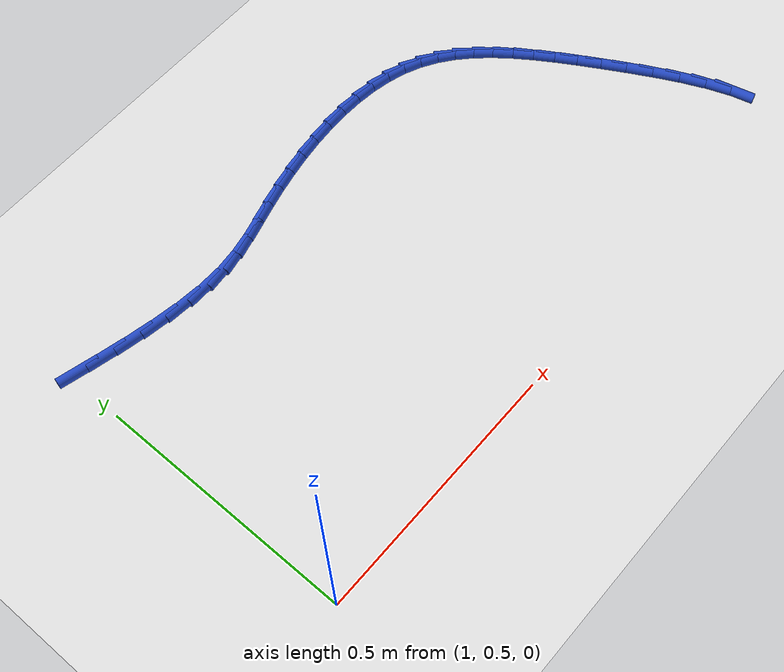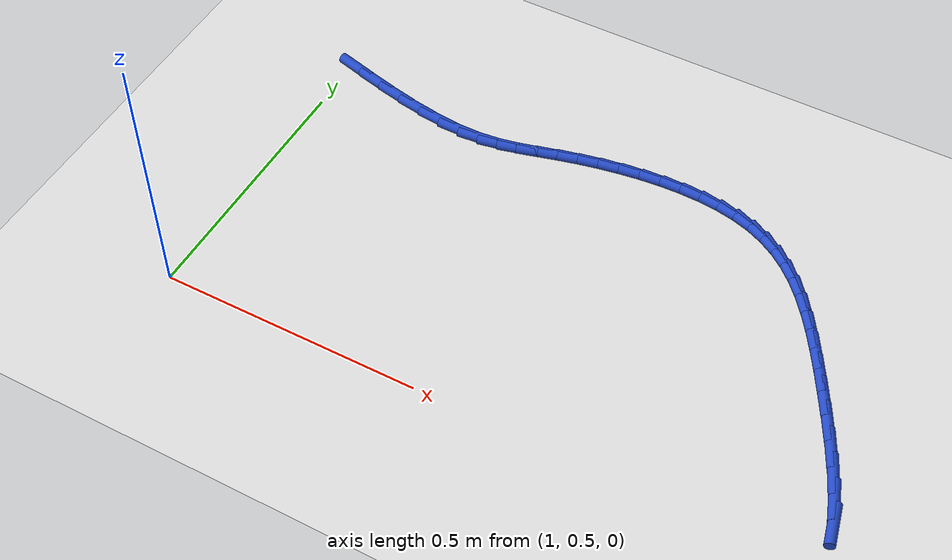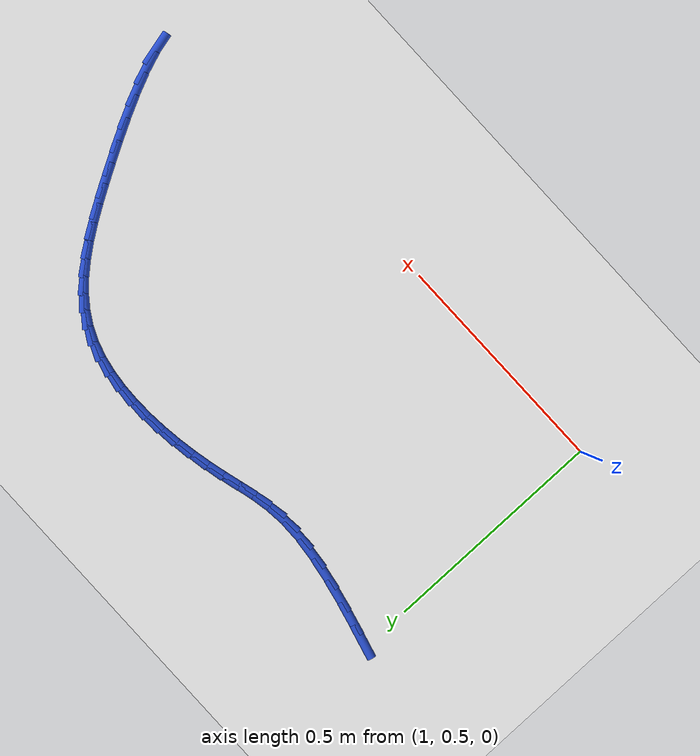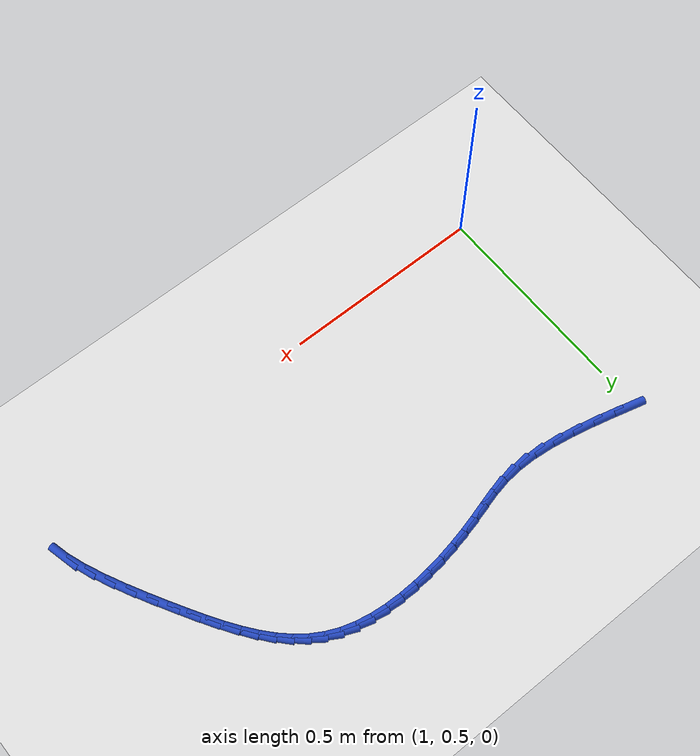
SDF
<sdf version="1.6">
 <world name="default">
  <model name="ground_plane">
   <static>1</static>
   <link name="link">
    <collision name="collision">
     <geometry><plane><normal>0 0 1</normal><size>100 100</size></plane></geometry>
     <surface><friction><ode><mu>100</mu><mu2>50</mu2></ode></friction></surface>
    </collision>
    <visual name="visual">
     <cast_shadows>0</cast_shadows>
     <geometry><plane><normal>0 0 1</normal><size>100 100</size></plane></geometry>
     <material>
      <script><uri>file://media/materials/scripts/gazebo.material</uri><name>Gazebo/WhiteGlow</name></script>
     </material>
    </visual>
   </link>
  </model>
  <model name="line">
   <link name="link_53">
    <pose>1.0143948870020116 1.1049050659016517 0.01 0 1.57 -0.2545929479313353</pose>
    <collision name="collision">
     <geometry><cylinder><radius>0.01</radius><length>0.08</length></cylinder></geometry>
    </collision>
    <visual name="visual">
     <material>
      <script><name>Gazebo/Blue</name><uri>file://media/materials/scripts/gazebo.material</uri></script>
     </material>
     <geometry><cylinder><radius>0.01</radius><length>0.08</length></cylinder></geometry>
    </visual>
   </link>
   <link name="link_54">
    <pose>1.067549250122831 1.0910721688117375 0.01 0 1.57 -0.23513124235477112</pose>
    <collision name="collision">
     <geometry><cylinder><radius>0.01</radius><length>0.08</length></cylinder></geometry>
    </collision>
    <visual name="visual">
     <material>
      <script><name>Gazebo/Blue</name><uri>file://media/materials/scripts/gazebo.material</uri></script>
     </material>
     <geometry><cylinder><radius>0.01</radius><length>0.08</length></cylinder></geometry>
    </visual>
   </link>
   <link name="link_55">
    <pose>1.1206288498065708 1.0783562886072109 0.01 0 1.57 -0.20435600917754376</pose>
    <collision name="collision">
     <geometry><cylinder><radius>0.01</radius><length>0.08</length></cylinder></geometry>
    </collision>
    <visual name="visual">
     <material>
      <script><name>Gazebo/Blue</name><uri>file://media/materials/scripts/gazebo.material</uri></script>
     </material>
     <geometry><cylinder><radius>0.01</radius><length>0.08</length></cylinder></geometry>
    </visual>
   </link>
   <link name="link_56">
    <pose>1.172781233932611 1.0675477551997958 0.01 0 1.57 -0.15964658404787332</pose>
    <collision name="collision">
     <geometry><cylinder><radius>0.01</radius><length>0.08</length></cylinder></geometry>
    </collision>
    <visual name="visual">
     <material>
      <script><name>Gazebo/Blue</name><uri>file://media/materials/scripts/gazebo.material</uri></script>
     </material>
     <geometry><cylinder><radius>0.01</radius><length>0.08</length></cylinder></geometry>
    </visual>
   </link>
   <link name="link_57">
    <pose>1.2231539503803277 1.0594368985012161 0.01 0 1.57 -0.09653172196595161</pose>
    <collision name="collision">
     <geometry><cylinder><radius>0.01</radius><length>0.08</length></cylinder></geometry>
    </collision>
    <visual name="visual">
     <material>
      <script><name>Gazebo/Blue</name><uri>file://media/materials/scripts/gazebo.material</uri></script>
     </material>
     <geometry><cylinder><radius>0.01</radius><length>0.08</length></cylinder></geometry>
    </visual>
   </link>
   <link name="link_58">
    <pose>1.2708945470290993 1.0548140484231951 0.01 0 1.57 -0.007829685031041951</pose>
    <collision name="collision">
     <geometry><cylinder><radius>0.01</radius><length>0.08</length></cylinder></geometry>
    </collision>
    <visual name="visual">
     <material>
      <script><name>Gazebo/Blue</name><uri>file://media/materials/scripts/gazebo.material</uri></script>
     </material>
     <geometry><cylinder><radius>0.01</radius><length>0.08</length></cylinder></geometry>
    </visual>
   </link>
   <link name="link_59">
    <pose>1.3151526633321604 1.054467514231139 0.01 0 1.57 0.10198420498334344</pose>
    <collision name="collision">
     <geometry><cylinder><radius>0.01</radius><length>0.08</length></cylinder></geometry>
    </collision>
    <visual name="visual">
     <material>
      <script><name>Gazebo/Blue</name><uri>file://media/materials/scripts/gazebo.material</uri></script>
     </material>
     <geometry><cylinder><radius>0.01</radius><length>0.08</length></cylinder></geometry>
    </visual>
   </link>
   <link name="link_60">
    <pose>1.3556696191958126 1.058613989263085 0.01 0 1.57 0.1953231773012431</pose>
    <collision name="collision">
     <geometry><cylinder><radius>0.01</radius><length>0.08</length></cylinder></geometry>
    </collision>
    <visual name="visual">
     <material>
      <script><name>Gazebo/Blue</name><uri>file://media/materials/scripts/gazebo.material</uri></script>
     </material>
     <geometry><cylinder><radius>0.01</radius><length>0.08</length></cylinder></geometry>
    </visual>
   </link>
   <link name="link_61">
    <pose>1.3935883825776372 1.066116050210965 0.01 0 1.57 0.2541342272450698</pose>
    <collision name="collision">
     <geometry><cylinder><radius>0.01</radius><length>0.08</length></cylinder></geometry>
    </collision>
    <visual name="visual">
     <material>
      <script><name>Gazebo/Blue</name><uri>file://media/materials/scripts/gazebo.material</uri></script>
     </material>
     <geometry><cylinder><radius>0.01</radius><length>0.08</length></cylinder></geometry>
    </visual>
   </link>
   <link name="link_62">
    <pose>1.430254888983317 1.0756401890682346 0.01 0 1.57 0.27098590067596423</pose>
    <collision name="collision">
     <geometry><cylinder><radius>0.01</radius><length>0.08</length></cylinder></geometry>
    </collision>
    <visual name="visual">
     <material>
      <script><name>Gazebo/Blue</name><uri>file://media/materials/scripts/gazebo.material</uri></script>
     </material>
     <geometry><cylinder><radius>0.01</radius><length>0.08</length></cylinder></geometry>
    </visual>
   </link>
   <link name="link_63">
    <pose>1.4670150739185377 1.08585289782835 0.01 0 1.57 0.24851708296932037</pose>
    <collision name="collision">
     <geometry><cylinder><radius>0.01</radius><length>0.08</length></cylinder></geometry>
    </collision>
    <visual name="visual">
     <material>
      <script><name>Gazebo/Blue</name><uri>file://media/materials/scripts/gazebo.material</uri></script>
     </material>
     <geometry><cylinder><radius>0.01</radius><length>0.08</length></cylinder></geometry>
    </visual>
   </link>
   <link name="link_64">
    <pose>1.50506588852211 1.0955087834785697 0.01 0 1.57 0.2128059227294861</pose>
    <collision name="collision">
     <geometry><cylinder><radius>0.01</radius><length>0.08</length></cylinder></geometry>
    </collision>
    <visual name="visual">
     <material>
      <script><name>Gazebo/Blue</name><uri>file://media/materials/scripts/gazebo.material</uri></script>
     </material>
     <geometry><cylinder><radius>0.01</radius><length>0.08</length></cylinder></geometry>
    </visual>
   </link>
   <link name="link_65">
    <pose>1.5444826091018362 1.1040258539579462 0.01 0 1.57 0.17415238583057369</pose>
    <collision name="collision">
     <geometry><cylinder><radius>0.01</radius><length>0.08</length></cylinder></geometry>
    </collision>
    <visual name="visual">
     <material>
      <script><name>Gazebo/Blue</name><uri>file://media/materials/scripts/gazebo.material</uri></script>
     </material>
     <geometry><cylinder><radius>0.01</radius><length>0.08</length></cylinder></geometry>
    </visual>
   </link>
   <link name="link_66">
    <pose>1.5848296035919973 1.1111242877561243 0.01 0 1.57 0.13150005736435066</pose>
    <collision name="collision">
     <geometry><cylinder><radius>0.01</radius><length>0.08</length></cylinder></geometry>
    </collision>
    <visual name="visual">
     <material>
      <script><name>Gazebo/Blue</name><uri>file://media/materials/scripts/gazebo.material</uri></script>
     </material>
     <geometry><cylinder><radius>0.01</radius><length>0.08</length></cylinder></geometry>
    </visual>
   </link>
   <link name="link_67">
    <pose>1.6256686496167716 1.1165257953701877 0.01 0 1.57 0.08359176729940403</pose>
    <collision name="collision">
     <geometry><cylinder><radius>0.01</radius><length>0.08</length></cylinder></geometry>
    </collision>
    <visual name="visual">
     <material>
      <script><name>Gazebo/Blue</name><uri>file://media/materials/scripts/gazebo.material</uri></script>
     </material>
     <geometry><cylinder><radius>0.01</radius><length>0.08</length></cylinder></geometry>
    </visual>
   </link>
   <link name="link_68">
    <pose>1.6665615248003414 1.1199520872972202 0.01 0 1.57 0.0289435488416422</pose>
    <collision name="collision">
     <geometry><cylinder><radius>0.01</radius><length>0.08</length></cylinder></geometry>
    </collision>
    <visual name="visual">
     <material>
      <script><name>Gazebo/Blue</name><uri>file://media/materials/scripts/gazebo.material</uri></script>
     </material>
     <geometry><cylinder><radius>0.01</radius><length>0.08</length></cylinder></geometry>
    </visual>
   </link>
   <link name="link_69">
    <pose>1.7070700067668874 1.1211248740343056 0.01 0 1.57 -0.03423075354225135</pose>
    <collision name="collision">
     <geometry><cylinder><radius>0.01</radius><length>0.08</length></cylinder></geometry>
    </collision>
    <visual name="visual">
     <material>
      <script><name>Gazebo/Blue</name><uri>file://media/materials/scripts/gazebo.material</uri></script>
     </material>
     <geometry><cylinder><radius>0.01</radius><length>0.08</length></cylinder></geometry>
    </visual>
   </link>
   <link name="link_70">
    <pose>1.7467558731405881 1.1197658660785272 0.01 0 1.57 -0.10807661653916784</pose>
    <collision name="collision">
     <geometry><cylinder><radius>0.01</radius><length>0.08</length></cylinder></geometry>
    </collision>
    <visual name="visual">
     <material>
      <script><name>Gazebo/Blue</name><uri>file://media/materials/scripts/gazebo.material</uri></script>
     </material>
     <geometry><cylinder><radius>0.01</radius><length>0.08</length></cylinder></geometry>
    </visual>
   </link>
   <link name="link_71">
    <pose>1.785180901545626 1.1155967739269688 0.01 0 1.57 -0.19509766982211882</pose>
    <collision name="collision">
     <geometry><cylinder><radius>0.01</radius><length>0.08</length></cylinder></geometry>
    </collision>
    <visual name="visual">
     <material>
      <script><name>Gazebo/Blue</name><uri>file://media/materials/scripts/gazebo.material</uri></script>
     </material>
     <geometry><cylinder><radius>0.01</radius><length>0.08</length></cylinder></geometry>
    </visual>
   </link>
   <link name="link_72">
    <pose>1.8219068696061818 1.1083393080767143 0.01 0 1.57 -0.2980091135453221</pose>
    <collision name="collision">
     <geometry><cylinder><radius>0.01</radius><length>0.08</length></cylinder></geometry>
    </collision>
    <visual name="visual">
     <material>
      <script><name>Gazebo/Blue</name><uri>file://media/materials/scripts/gazebo.material</uri></script>
     </material>
     <geometry><cylinder><radius>0.01</radius><length>0.08</length></cylinder></geometry>
    </visual>
   </link>
   <link name="link_73">
    <pose>1.8564955549464361 1.0977151790248476 0.01 0 1.57 -0.4173073700957433</pose>
    <collision name="collision">
     <geometry><cylinder><radius>0.01</radius><length>0.08</length></cylinder></geometry>
    </collision>
    <visual name="visual">
     <material>
      <script><name>Gazebo/Blue</name><uri>file://media/materials/scripts/gazebo.material</uri></script>
     </material>
     <geometry><cylinder><radius>0.01</radius><length>0.08</length></cylinder></geometry>
    </visual>
   </link>
   <link name="link_74">
    <pose>1.8885894818088 1.083486439116712 0.01 0 1.57 -0.5393908170670209</pose>
    <collision name="collision">
     <geometry><cylinder><radius>0.01</radius><length>0.08</length></cylinder></geometry>
    </collision>
    <visual name="visual">
     <material>
      <script><name>Gazebo/Blue</name><uri>file://media/materials/scripts/gazebo.material</uri></script>
     </material>
     <geometry><cylinder><radius>0.01</radius><length>0.08</length></cylinder></geometry>
    </visual>
   </link>
   <link name="link_75">
    <pose>1.9183476201681884 1.0656731623440243 0.01 0 1.57 -0.6535045213918862</pose>
    <collision name="collision">
     <geometry><cylinder><radius>0.01</radius><length>0.08</length></cylinder></geometry>
    </collision>
    <visual name="visual">
     <material>
      <script><name>Gazebo/Blue</name><uri>file://media/materials/scripts/gazebo.material</uri></script>
     </material>
     <geometry><cylinder><radius>0.01</radius><length>0.08</length></cylinder></geometry>
    </visual>
   </link>
   <link name="link_76">
    <pose>1.9461323376602966 1.044397042280193 0.01 0 1.57 -0.754750265106618</pose>
    <collision name="collision">
     <geometry><cylinder><radius>0.01</radius><length>0.08</length></cylinder></geometry>
    </collision>
    <visual name="visual">
     <material>
      <script><name>Gazebo/Blue</name><uri>file://media/materials/scripts/gazebo.material</uri></script>
     </material>
     <geometry><cylinder><radius>0.01</radius><length>0.08</length></cylinder></geometry>
    </visual>
   </link>
   <link name="link_77">
    <pose>1.9723064927104046 1.0197800177021954 0.01 0 1.57 -0.8404865064338307</pose>
    <collision name="collision">
     <geometry><cylinder><radius>0.01</radius><length>0.08</length></cylinder></geometry>
    </collision>
    <visual name="visual">
     <material>
      <script><name>Gazebo/Blue</name><uri>file://media/materials/scripts/gazebo.material</uri></script>
     </material>
     <geometry><cylinder><radius>0.01</radius><length>0.08</length></cylinder></geometry>
    </visual>
   </link>
   <link name="link_78">
    <pose>1.9972329437437935 0.9919440273870086 0.01 0 1.57 -0.9101038989665328</pose>
    <collision name="collision">
     <geometry><cylinder><radius>0.01</radius><length>0.08</length></cylinder></geometry>
    </collision>
    <visual name="visual">
     <material>
      <script><name>Gazebo/Blue</name><uri>file://media/materials/scripts/gazebo.material</uri></script>
     </material>
     <geometry><cylinder><radius>0.01</radius><length>0.08</length></cylinder></geometry>
    </visual>
   </link>
   <link name="link_79">
    <pose>2.021274549185743 0.9610110101116096 0.01 0 1.57 -0.9643595491380894</pose>
    <collision name="collision">
     <geometry><cylinder><radius>0.01</radius><length>0.08</length></cylinder></geometry>
    </collision>
    <visual name="visual">
     <material>
      <script><name>Gazebo/Blue</name><uri>file://media/materials/scripts/gazebo.material</uri></script>
     </material>
     <geometry><cylinder><radius>0.01</radius><length>0.08</length></cylinder></geometry>
    </visual>
   </link>
   <link name="link_80">
    <pose>2.0447941674615353 0.9271029046529766 0.01 0 1.57 -1.0047070122348365</pose>
    <collision name="collision">
     <geometry><cylinder><radius>0.01</radius><length>0.08</length></cylinder></geometry>
    </collision>
    <visual name="visual">
     <material>
      <script><name>Gazebo/Blue</name><uri>file://media/materials/scripts/gazebo.material</uri></script>
     </material>
     <geometry><cylinder><radius>0.01</radius><length>0.08</length></cylinder></geometry>
    </visual>
   </link>
   <link name="link_81">
    <pose>2.0681546569964495 0.8903416497880863 0.01 0 1.57 -1.0328242882978793</pose>
    <collision name="collision">
     <geometry><cylinder><radius>0.01</radius><length>0.08</length></cylinder></geometry>
    </collision>
    <visual name="visual">
     <material>
      <script><name>Gazebo/Blue</name><uri>file://media/materials/scripts/gazebo.material</uri></script>
     </material>
     <geometry><cylinder><radius>0.01</radius><length>0.08</length></cylinder></geometry>
    </visual>
   </link>
   <link name="link_82">
    <pose>2.0917188762157672 0.8508491842939158 0.01 0 1.57 -1.0503502558810145</pose>
    <collision name="collision">
     <geometry><cylinder><radius>0.01</radius><length>0.08</length></cylinder></geometry>
    </collision>
    <visual name="visual">
     <material>
      <script><name>Gazebo/Blue</name><uri>file://media/materials/scripts/gazebo.material</uri></script>
     </material>
     <geometry><cylinder><radius>0.01</radius><length>0.08</length></cylinder></geometry>
    </visual>
   </link>
   <link name="link_83">
    <pose>2.115849658332855 0.8087474628553449 0.01 0 1.57 -1.0622470371206965</pose>
    <collision name="collision">
     <geometry><cylinder><radius>0.01</radius><length>0.08</length></cylinder></geometry>
    </collision>
    <visual name="visual">
     <material>
      <script><name>Gazebo/Blue</name><uri>file://media/materials/scripts/gazebo.material</uri></script>
     </material>
     <geometry><cylinder><radius>0.01</radius><length>0.08</length></cylinder></geometry>
    </visual>
   </link>
   <link name="link_84">
    <pose>2.140595495657105 0.7643567791059349 0.01 0 1.57 -1.0815991349617615</pose>
    <collision name="collision">
     <geometry><cylinder><radius>0.01</radius><length>0.08</length></cylinder></geometry>
    </collision>
    <visual name="visual">
     <material>
      <script><name>Gazebo/Blue</name><uri>file://media/materials/scripts/gazebo.material</uri></script>
     </material>
     <geometry><cylinder><radius>0.01</radius><length>0.08</length></cylinder></geometry>
    </visual>
   </link>
   <link name="link_85">
    <pose>2.164906187762674 0.7186906662776361 0.01 0 1.57 -1.1124558007275462</pose>
    <collision name="collision">
     <geometry><cylinder><radius>0.01</radius><length>0.08</length></cylinder></geometry>
    </collision>
    <visual name="visual">
     <material>
      <script><name>Gazebo/Blue</name><uri>file://media/materials/scripts/gazebo.material</uri></script>
     </material>
     <geometry><cylinder><radius>0.01</radius><length>0.08</length></cylinder></geometry>
    </visual>
   </link>
   <link name="link_86">
    <pose>2.187491632224596 0.6729140280085125 0.01 0 1.57 -1.158308833957714</pose>
    <collision name="collision">
     <geometry><cylinder><radius>0.01</radius><length>0.08</length></cylinder></geometry>
    </collision>
    <visual name="visual">
     <material>
      <script><name>Gazebo/Blue</name><uri>file://media/materials/scripts/gazebo.material</uri></script>
     </material>
     <geometry><cylinder><radius>0.01</radius><length>0.08</length></cylinder></geometry>
    </visual>
   </link>
   <link name="link_87">
    <pose>2.207061726617905 0.6281917679366263 0.01 0 1.57 -1.2259997376130236</pose>
    <collision name="collision">
     <geometry><cylinder><radius>0.01</radius><length>0.08</length></cylinder></geometry>
    </collision>
    <visual name="visual">
     <material>
      <script><name>Gazebo/Blue</name><uri>file://media/materials/scripts/gazebo.material</uri></script>
     </material>
     <geometry><cylinder><radius>0.01</radius><length>0.08</length></cylinder></geometry>
    </visual>
   </link>
   <link name="link_88">
    <pose>2.222326368517639 0.5856887897000402 0.01 0 1.57 -1.3284806734994299</pose>
    <collision name="collision">
     <geometry><cylinder><radius>0.01</radius><length>0.08</length></cylinder></geometry>
    </collision>
    <visual name="visual">
     <material>
      <script><name>Gazebo/Blue</name><uri>file://media/materials/scripts/gazebo.material</uri></script>
     </material>
     <geometry><cylinder><radius>0.01</radius><length>0.08</length></cylinder></geometry>
    </visual>
   </link>
  </model>
 </world>
</sdf>
